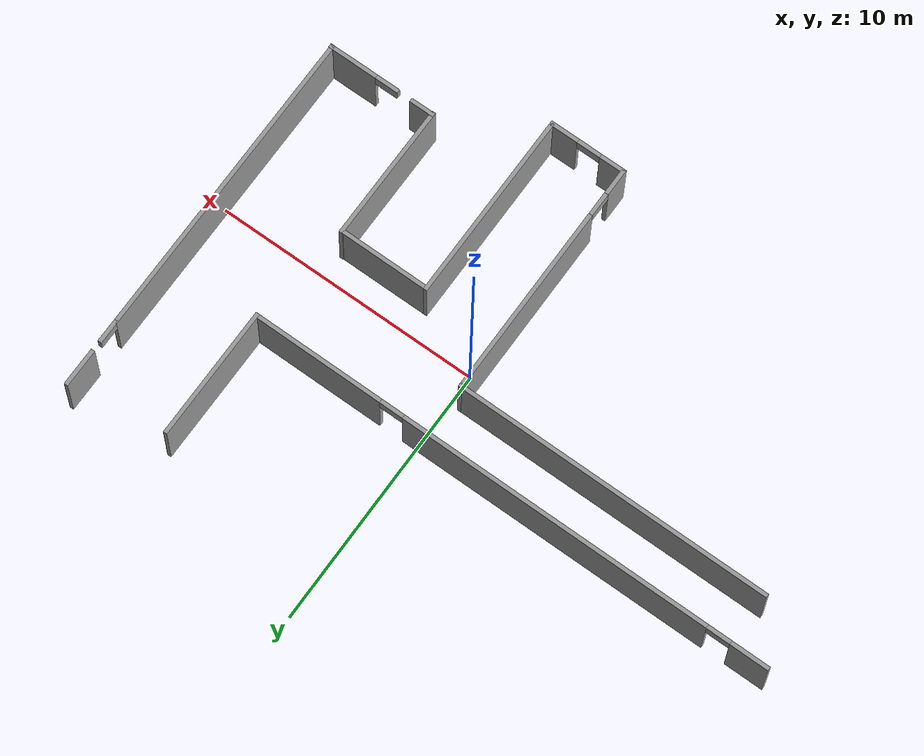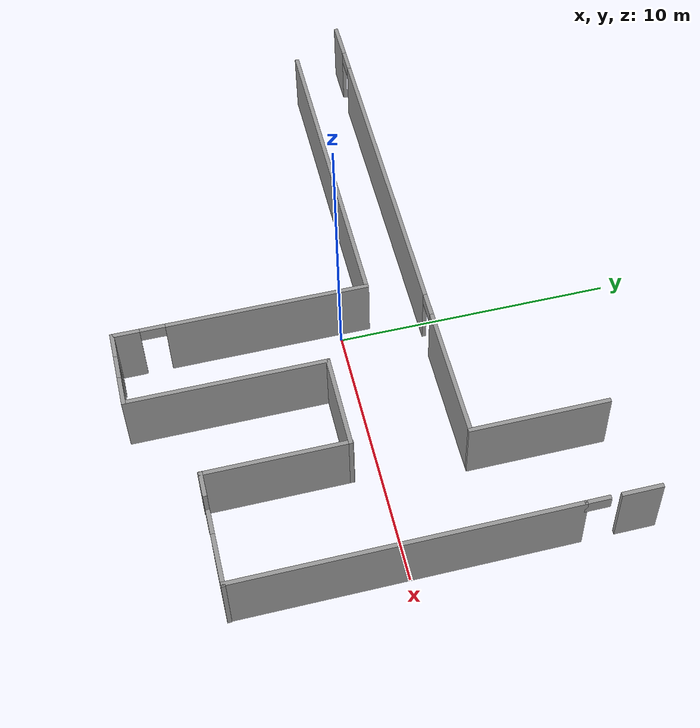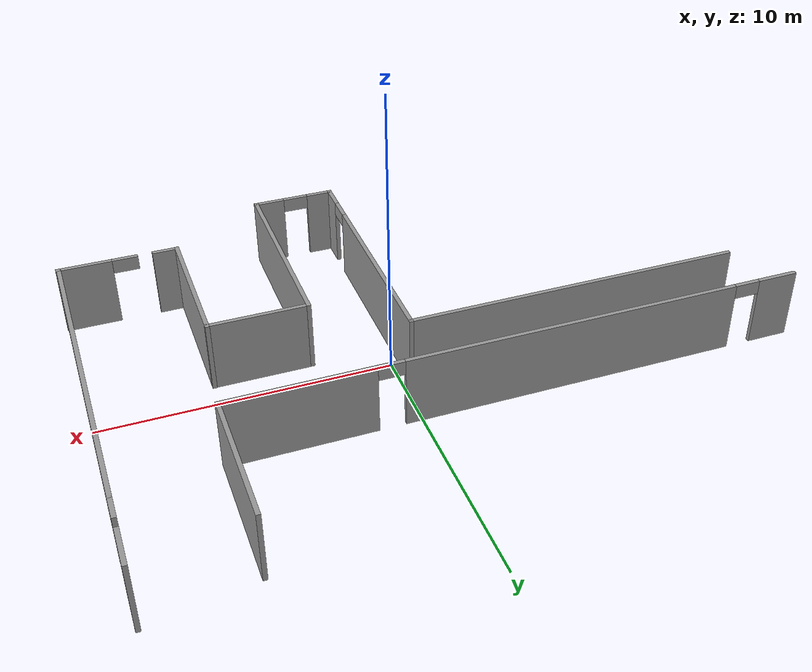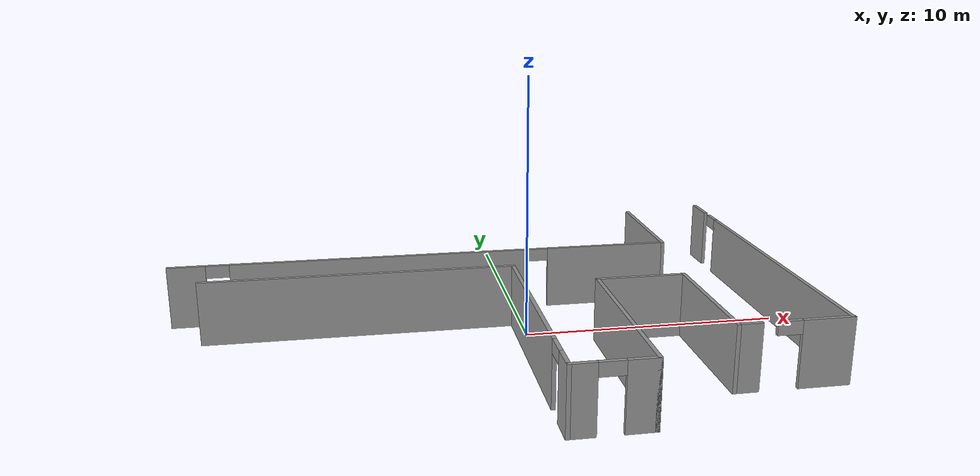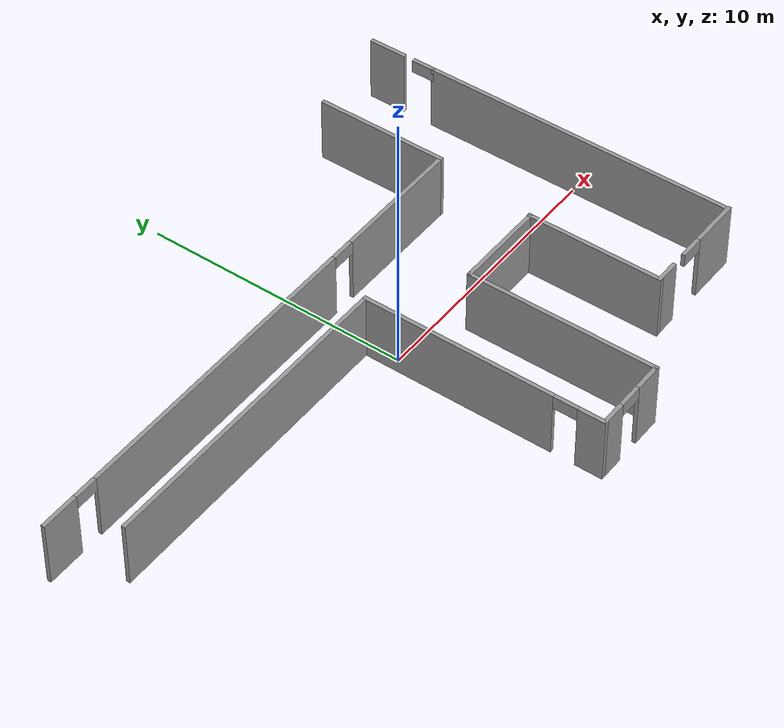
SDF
<?xml version='1.0'?>
<sdf version='1.7'>
  <model name='mil_building_2'>
    <link name='Wall_10'>
      <pose>2.5019 -8.05 0 0 -0 0</pose>
      <self_collide>0</self_collide>
      <enable_wind>0</enable_wind>
      <kinematic>0</kinematic>
      <visual name='Wall_10_Visual'>
        <pose>0 0 1.25 0 -0 0</pose>
        <geometry>
          <box>
            <size>0.15 0.15 2.5</size>
          </box>
        </geometry>
        <material>
          <script>
            <uri>file://media/materials/scripts/gazebo.material</uri>
            <name>Gazebo/Grey</name>
          </script>
          <ambient>1 1 1 1</ambient>
          <shader type='pixel'/>
        </material>
        <meta>
          <layer>0</layer>
        </meta>
        <transparency>0</transparency>
        <cast_shadows>1</cast_shadows>
      </visual>
      <collision name='Wall_10_Collision'>
        <laser_retro>0</laser_retro>
        <max_contacts>10</max_contacts>
        <pose>0 0 1.25 0 -0 0</pose>
        <geometry>
          <box>
            <size>0.15 0.15 2.5</size>
          </box>
        </geometry>
        <surface>
          <friction>
            <ode>
              <mu>1</mu>
              <mu2>1</mu2>
              <fdir1>0 0 0</fdir1>
              <slip1>0</slip1>
              <slip2>0</slip2>
            </ode>
            <torsional>
              <coefficient>1</coefficient>
              <patch_radius>0</patch_radius>
              <surface_radius>0</surface_radius>
              <use_patch_radius>1</use_patch_radius>
              <ode>
                <slip>0</slip>
              </ode>
            </torsional>
          </friction>
          <bounce>
            <restitution_coefficient>0</restitution_coefficient>
            <threshold>1e+06</threshold>
          </bounce>
          <contact>
            <collide_without_contact>0</collide_without_contact>
            <collide_without_contact_bitmask>1</collide_without_contact_bitmask>
            <collide_bitmask>1</collide_bitmask>
            <ode>
              <soft_cfm>0</soft_cfm>
              <soft_erp>0.2</soft_erp>
              <kp>1e+13</kp>
              <kd>1</kd>
              <max_vel>0.01</max_vel>
              <min_depth>0</min_depth>
            </ode>
            <bullet>
              <split_impulse>1</split_impulse>
              <split_impulse_penetration_threshold>-0.01</split_impulse_penetration_threshold>
              <soft_cfm>0</soft_cfm>
              <soft_erp>0.2</soft_erp>
              <kp>1e+13</kp>
              <kd>1</kd>
            </bullet>
          </contact>
        </surface>
      </collision>
    </link>
    <link name='Wall_11'>
      <pose>2.5019 -4.52011 0 0 -0 1.5708</pose>
      <self_collide>0</self_collide>
      <enable_wind>0</enable_wind>
      <kinematic>0</kinematic>
      <visual name='Wall_11_Visual'>
        <pose>0 0 1.25 0 -0 0</pose>
        <geometry>
          <box>
            <size>7.20977 0.15 2.5</size>
          </box>
        </geometry>
        <material>
          <script>
            <uri>file://media/materials/scripts/gazebo.material</uri>
            <name>Gazebo/Grey</name>
          </script>
          <ambient>0.827451 0.843137 0.811765 1</ambient>
          <shader type='pixel'/>
        </material>
        <meta>
          <layer>0</layer>
        </meta>
        <transparency>0</transparency>
        <cast_shadows>1</cast_shadows>
      </visual>
      <collision name='Wall_11_Collision'>
        <laser_retro>0</laser_retro>
        <max_contacts>10</max_contacts>
        <pose>0 0 1.25 0 -0 0</pose>
        <geometry>
          <box>
            <size>7.20977 0.15 2.5</size>
          </box>
        </geometry>
        <surface>
          <friction>
            <ode>
              <mu>1</mu>
              <mu2>1</mu2>
              <fdir1>0 0 0</fdir1>
              <slip1>0</slip1>
              <slip2>0</slip2>
            </ode>
            <torsional>
              <coefficient>1</coefficient>
              <patch_radius>0</patch_radius>
              <surface_radius>0</surface_radius>
              <use_patch_radius>1</use_patch_radius>
              <ode>
                <slip>0</slip>
              </ode>
            </torsional>
          </friction>
          <bounce>
            <restitution_coefficient>0</restitution_coefficient>
            <threshold>1e+06</threshold>
          </bounce>
          <contact>
            <collide_without_contact>0</collide_without_contact>
            <collide_without_contact_bitmask>1</collide_without_contact_bitmask>
            <collide_bitmask>1</collide_bitmask>
            <ode>
              <soft_cfm>0</soft_cfm>
              <soft_erp>0.2</soft_erp>
              <kp>1e+13</kp>
              <kd>1</kd>
              <max_vel>0.01</max_vel>
              <min_depth>0</min_depth>
            </ode>
            <bullet>
              <split_impulse>1</split_impulse>
              <split_impulse_penetration_threshold>-0.01</split_impulse_penetration_threshold>
              <soft_cfm>0</soft_cfm>
              <soft_erp>0.2</soft_erp>
              <kp>1e+13</kp>
              <kd>1</kd>
            </bullet>
          </contact>
        </surface>
      </collision>
    </link>
    <link name='Wall_16'>
      <pose>5.88344 -3.4986 0 0 0 -1.5708</pose>
      <self_collide>0</self_collide>
      <enable_wind>0</enable_wind>
      <kinematic>0</kinematic>
      <gravity>1</gravity>
      <inertial>
        <mass>1</mass>
        <pose>0 0 0 0 -0 0</pose>
        <inertia>
          <ixx>1</ixx>
          <ixy>0</ixy>
          <ixz>0</ixz>
          <iyy>1</iyy>
          <iyz>0</iyz>
          <izz>1</izz>
        </inertia>
      </inertial>
      <visual name='Wall_16_Visual'>
        <pose>0 0 1.25 0 -0 0</pose>
        <geometry>
          <box>
            <size>5.2 0.15 2.5</size>
          </box>
        </geometry>
        <material>
          <script>
            <uri>file://media/materials/scripts/gazebo.material</uri>
            <name>Gazebo/Grey</name>
          </script>
          <ambient>1 1 1 1</ambient>
          <shader type='pixel'>
            <normal_map>__default__</normal_map>
          </shader>
          <diffuse>0.7 0.7 0.7 1</diffuse>
          <specular>0.01 0.01 0.01 1</specular>
          <emissive>0 0 0 1</emissive>
        </material>
        <meta>
          <layer>0</layer>
        </meta>
        <transparency>0</transparency>
        <cast_shadows>1</cast_shadows>
      </visual>
      <collision name='Wall_16_Collision'>
        <laser_retro>0</laser_retro>
        <max_contacts>10</max_contacts>
        <pose>0 0 1.25 0 -0 0</pose>
        <geometry>
          <box>
            <size>6.95977 0.15 2.5</size>
          </box>
        </geometry>
        <surface>
          <friction>
            <ode>
              <mu>1</mu>
              <mu2>1</mu2>
              <fdir1>0 0 0</fdir1>
              <slip1>0</slip1>
              <slip2>0</slip2>
            </ode>
            <torsional>
              <coefficient>1</coefficient>
              <patch_radius>0</patch_radius>
              <surface_radius>0</surface_radius>
              <use_patch_radius>1</use_patch_radius>
              <ode>
                <slip>0</slip>
              </ode>
            </torsional>
          </friction>
          <bounce>
            <restitution_coefficient>0</restitution_coefficient>
            <threshold>1e+06</threshold>
          </bounce>
          <contact>
            <collide_without_contact>0</collide_without_contact>
            <collide_without_contact_bitmask>1</collide_without_contact_bitmask>
            <collide_bitmask>1</collide_bitmask>
            <ode>
              <soft_cfm>0</soft_cfm>
              <soft_erp>0.2</soft_erp>
              <kp>1e+13</kp>
              <kd>1</kd>
              <max_vel>0.01</max_vel>
              <min_depth>0</min_depth>
            </ode>
            <bullet>
              <split_impulse>1</split_impulse>
              <split_impulse_penetration_threshold>-0.01</split_impulse_penetration_threshold>
              <soft_cfm>0</soft_cfm>
              <soft_erp>0.2</soft_erp>
              <kp>1e+13</kp>
              <kd>1</kd>
            </bullet>
          </contact>
        </surface>
      </collision>
    </link>
    <link name='Wall_17'>
      <pose>7.69168 -6.00945 0 0 -0 0</pose>
      <self_collide>0</self_collide>
      <enable_wind>0</enable_wind>
      <kinematic>0</kinematic>
      <gravity>1</gravity>
      <inertial>
        <mass>1</mass>
        <pose>0 0 0 0 -0 0</pose>
        <inertia>
          <ixx>1</ixx>
          <ixy>0</ixy>
          <ixz>0</ixz>
          <iyy>1</iyy>
          <iyz>0</iyz>
          <izz>1</izz>
        </inertia>
      </inertial>
      <visual name='Wall_17_Visual_0'>
        <pose>-1.40412 0 1.25 0 -0 0</pose>
        <geometry>
          <box>
            <size>0.94176 0.15 2.5</size>
          </box>
        </geometry>
        <material>
          <script>
            <uri>file://media/materials/scripts/gazebo.material</uri>
            <name>Gazebo/Grey</name>
          </script>
          <ambient>0.827 0.843 0.812 1</ambient>
          <shader type='pixel'>
            <normal_map>__default__</normal_map>
          </shader>
          <diffuse>0.7 0.7 0.7 1</diffuse>
          <specular>0.01 0.01 0.01 1</specular>
          <emissive>0 0 0 1</emissive>
        </material>
        <meta>
          <layer>0</layer>
        </meta>
        <transparency>0</transparency>
        <cast_shadows>1</cast_shadows>
      </visual>
      <visual name='Wall_17_Visual_1'>
        <pose>1.42088 0 1.25 0 -0 0</pose>
        <geometry>
          <box>
            <size>1.90823 0.15 2.5</size>
          </box>
        </geometry>
        <material>
          <script>
            <uri>file://media/materials/scripts/gazebo.material</uri>
            <name>Gazebo/Grey</name>
          </script>
          <ambient>0.827 0.843 0.812 1</ambient>
          <shader type='pixel'>
            <normal_map>__default__</normal_map>
          </shader>
          <diffuse>0.7 0.7 0.7 1</diffuse>
          <specular>0.01 0.01 0.01 1</specular>
          <emissive>0 0 0 1</emissive>
        </material>
        <meta>
          <layer>0</layer>
        </meta>
        <transparency>0</transparency>
        <cast_shadows>1</cast_shadows>
      </visual>
      <visual name='Wall_17_Visual_2'>
        <pose>0.016765 0 2.25 0 -0 0</pose>
        <geometry>
          <box>
            <size>0.9 0.15 0.5</size>
          </box>
        </geometry>
        <material>
          <script>
            <uri>file://media/materials/scripts/gazebo.material</uri>
            <name>Gazebo/Grey</name>
          </script>
          <ambient>0.827 0.843 0.812 1</ambient>
          <shader type='pixel'>
            <normal_map>__default__</normal_map>
          </shader>
          <diffuse>0.7 0.7 0.7 1</diffuse>
          <specular>0.01 0.01 0.01 1</specular>
          <emissive>0 0 0 1</emissive>
        </material>
        <meta>
          <layer>0</layer>
        </meta>
        <transparency>0</transparency>
        <cast_shadows>1</cast_shadows>
      </visual>
      <collision name='Wall_17_Collision_0'>
        <laser_retro>0</laser_retro>
        <max_contacts>10</max_contacts>
        <pose>-1.40412 0 1.25 0 -0 0</pose>
        <geometry>
          <box>
            <size>1.94176 0.15 2.5</size>
          </box>
        </geometry>
        <surface>
          <friction>
            <ode>
              <mu>1</mu>
              <mu2>1</mu2>
              <fdir1>0 0 0</fdir1>
              <slip1>0</slip1>
              <slip2>0</slip2>
            </ode>
            <torsional>
              <coefficient>1</coefficient>
              <patch_radius>0</patch_radius>
              <surface_radius>0</surface_radius>
              <use_patch_radius>1</use_patch_radius>
              <ode>
                <slip>0</slip>
              </ode>
            </torsional>
          </friction>
          <bounce>
            <restitution_coefficient>0</restitution_coefficient>
            <threshold>1e+06</threshold>
          </bounce>
          <contact>
            <collide_without_contact>0</collide_without_contact>
            <collide_without_contact_bitmask>1</collide_without_contact_bitmask>
            <collide_bitmask>1</collide_bitmask>
            <ode>
              <soft_cfm>0</soft_cfm>
              <soft_erp>0.2</soft_erp>
              <kp>1e+13</kp>
              <kd>1</kd>
              <max_vel>0.01</max_vel>
              <min_depth>0</min_depth>
            </ode>
            <bullet>
              <split_impulse>1</split_impulse>
              <split_impulse_penetration_threshold>-0.01</split_impulse_penetration_threshold>
              <soft_cfm>0</soft_cfm>
              <soft_erp>0.2</soft_erp>
              <kp>1e+13</kp>
              <kd>1</kd>
            </bullet>
          </contact>
        </surface>
      </collision>
      <collision name='Wall_17_Collision_1'>
        <laser_retro>0</laser_retro>
        <max_contacts>10</max_contacts>
        <pose>1.42088 0 1.25 0 -0 0</pose>
        <geometry>
          <box>
            <size>1.90823 0.15 2.5</size>
          </box>
        </geometry>
        <surface>
          <friction>
            <ode>
              <mu>1</mu>
              <mu2>1</mu2>
              <fdir1>0 0 0</fdir1>
              <slip1>0</slip1>
              <slip2>0</slip2>
            </ode>
            <torsional>
              <coefficient>1</coefficient>
              <patch_radius>0</patch_radius>
              <surface_radius>0</surface_radius>
              <use_patch_radius>1</use_patch_radius>
              <ode>
                <slip>0</slip>
              </ode>
            </torsional>
          </friction>
          <bounce>
            <restitution_coefficient>0</restitution_coefficient>
            <threshold>1e+06</threshold>
          </bounce>
          <contact>
            <collide_without_contact>0</collide_without_contact>
            <collide_without_contact_bitmask>1</collide_without_contact_bitmask>
            <collide_bitmask>1</collide_bitmask>
            <ode>
              <soft_cfm>0</soft_cfm>
              <soft_erp>0.2</soft_erp>
              <kp>1e+13</kp>
              <kd>1</kd>
              <max_vel>0.01</max_vel>
              <min_depth>0</min_depth>
            </ode>
            <bullet>
              <split_impulse>1</split_impulse>
              <split_impulse_penetration_threshold>-0.01</split_impulse_penetration_threshold>
              <soft_cfm>0</soft_cfm>
              <soft_erp>0.2</soft_erp>
              <kp>1e+13</kp>
              <kd>1</kd>
            </bullet>
          </contact>
        </surface>
      </collision>
      <collision name='Wall_17_Collision_2'>
        <laser_retro>0</laser_retro>
        <max_contacts>10</max_contacts>
        <pose>0.016765 0 2.25 0 -0 0</pose>
        <geometry>
          <box>
            <size>0.9 0.15 0.5</size>
          </box>
        </geometry>
        <surface>
          <friction>
            <ode>
              <mu>1</mu>
              <mu2>1</mu2>
              <fdir1>0 0 0</fdir1>
              <slip1>0</slip1>
              <slip2>0</slip2>
            </ode>
            <torsional>
              <coefficient>1</coefficient>
              <patch_radius>0</patch_radius>
              <surface_radius>0</surface_radius>
              <use_patch_radius>1</use_patch_radius>
              <ode>
                <slip>0</slip>
              </ode>
            </torsional>
          </friction>
          <bounce>
            <restitution_coefficient>0</restitution_coefficient>
            <threshold>1e+06</threshold>
          </bounce>
          <contact>
            <collide_without_contact>0</collide_without_contact>
            <collide_without_contact_bitmask>1</collide_without_contact_bitmask>
            <collide_bitmask>1</collide_bitmask>
            <ode>
              <soft_cfm>0</soft_cfm>
              <soft_erp>0.2</soft_erp>
              <kp>1e+13</kp>
              <kd>1</kd>
              <max_vel>0.01</max_vel>
              <min_depth>0</min_depth>
            </ode>
            <bullet>
              <split_impulse>1</split_impulse>
              <split_impulse_penetration_threshold>-0.01</split_impulse_penetration_threshold>
              <soft_cfm>0</soft_cfm>
              <soft_erp>0.2</soft_erp>
              <kp>1e+13</kp>
              <kd>1</kd>
            </bullet>
          </contact>
        </surface>
      </collision>
    </link>
    <link name='Wall_18'>
      <pose>9.966 1.07393 0 0 -0 1.5708</pose>
      <self_collide>0</self_collide>
      <enable_wind>0</enable_wind>
      <kinematic>0</kinematic>
      <gravity>1</gravity>
      <inertial>
        <mass>1</mass>
        <pose>0 0 0 0 -0 0</pose>
        <inertia>
          <ixx>1</ixx>
          <ixy>0</ixy>
          <ixz>0</ixz>
          <iyy>1</iyy>
          <iyz>0</iyz>
          <izz>1</izz>
        </inertia>
      </inertial>
      <visual name='Wall_18_Visual_0'>
        <pose>-1.17215 0 1.25 0 -0 0</pose>
        <geometry>
          <box>
            <size>11.9557 0.15 2.5</size>
          </box>
        </geometry>
        <material>
          <script>
            <uri>file://media/materials/scripts/gazebo.material</uri>
            <name>Gazebo/Grey</name>
          </script>
          <ambient>0.827 0.843 0.812 1</ambient>
          <shader type='pixel'>
            <normal_map>__default__</normal_map>
          </shader>
          <diffuse>0.7 0.7 0.7 1</diffuse>
          <specular>0.01 0.01 0.01 1</specular>
          <emissive>0 0 0 1</emissive>
        </material>
        <meta>
          <layer>0</layer>
        </meta>
        <transparency>0</transparency>
        <cast_shadows>1</cast_shadows>
      </visual>
      <visual name='Wall_18_Visual_1'>
        <pose>6.67785 0 1.25 0 -0 0</pose>
        <geometry>
          <box>
            <size>1.4443 0.15 2.5</size>
          </box>
        </geometry>
        <material>
          <script>
            <uri>file://media/materials/scripts/gazebo.material</uri>
            <name>Gazebo/Grey</name>
          </script>
          <ambient>0.827 0.843 0.812 1</ambient>
          <shader type='pixel'>
            <normal_map>__default__</normal_map>
          </shader>
          <diffuse>0.7 0.7 0.7 1</diffuse>
          <specular>0.01 0.01 0.01 1</specular>
          <emissive>0 0 0 1</emissive>
        </material>
        <meta>
          <layer>0</layer>
        </meta>
        <transparency>0</transparency>
        <cast_shadows>1</cast_shadows>
      </visual>
      <visual name='Wall_18_Visual_2'>
        <pose>5.157 0 2.25 0 -0 0</pose>
        <geometry>
          <box>
            <size>0.9 0.15 0.5</size>
          </box>
        </geometry>
        <material>
          <script>
            <uri>file://media/materials/scripts/gazebo.material</uri>
            <name>Gazebo/Grey</name>
          </script>
          <ambient>0.827 0.843 0.812 1</ambient>
          <shader type='pixel'>
            <normal_map>__default__</normal_map>
          </shader>
          <diffuse>0.7 0.7 0.7 1</diffuse>
          <specular>0.01 0.01 0.01 1</specular>
          <emissive>0 0 0 1</emissive>
        </material>
        <meta>
          <layer>0</layer>
        </meta>
        <transparency>0</transparency>
        <cast_shadows>1</cast_shadows>
      </visual>
      <collision name='Wall_18_Collision_0'>
        <laser_retro>0</laser_retro>
        <max_contacts>10</max_contacts>
        <pose>-1.17215 0 1.25 0 -0 0</pose>
        <geometry>
          <box>
            <size>13.6557 0.15 2.5</size>
          </box>
        </geometry>
        <surface>
          <friction>
            <ode>
              <mu>1</mu>
              <mu2>1</mu2>
              <fdir1>0 0 0</fdir1>
              <slip1>0</slip1>
              <slip2>0</slip2>
            </ode>
            <torsional>
              <coefficient>1</coefficient>
              <patch_radius>0</patch_radius>
              <surface_radius>0</surface_radius>
              <use_patch_radius>1</use_patch_radius>
              <ode>
                <slip>0</slip>
              </ode>
            </torsional>
          </friction>
          <bounce>
            <restitution_coefficient>0</restitution_coefficient>
            <threshold>1e+06</threshold>
          </bounce>
          <contact>
            <collide_without_contact>0</collide_without_contact>
            <collide_without_contact_bitmask>1</collide_without_contact_bitmask>
            <collide_bitmask>1</collide_bitmask>
            <ode>
              <soft_cfm>0</soft_cfm>
              <soft_erp>0.2</soft_erp>
              <kp>1e+13</kp>
              <kd>1</kd>
              <max_vel>0.01</max_vel>
              <min_depth>0</min_depth>
            </ode>
            <bullet>
              <split_impulse>1</split_impulse>
              <split_impulse_penetration_threshold>-0.01</split_impulse_penetration_threshold>
              <soft_cfm>0</soft_cfm>
              <soft_erp>0.2</soft_erp>
              <kp>1e+13</kp>
              <kd>1</kd>
            </bullet>
          </contact>
        </surface>
      </collision>
      <collision name='Wall_18_Collision_1'>
        <laser_retro>0</laser_retro>
        <max_contacts>10</max_contacts>
        <pose>7.27785 0 1.25 0 -0 0</pose>
        <geometry>
          <box>
            <size>1.4443 0.15 2.5</size>
          </box>
        </geometry>
        <surface>
          <friction>
            <ode>
              <mu>1</mu>
              <mu2>1</mu2>
              <fdir1>0 0 0</fdir1>
              <slip1>0</slip1>
              <slip2>0</slip2>
            </ode>
            <torsional>
              <coefficient>1</coefficient>
              <patch_radius>0</patch_radius>
              <surface_radius>0</surface_radius>
              <use_patch_radius>1</use_patch_radius>
              <ode>
                <slip>0</slip>
              </ode>
            </torsional>
          </friction>
          <bounce>
            <restitution_coefficient>0</restitution_coefficient>
            <threshold>1e+06</threshold>
          </bounce>
          <contact>
            <collide_without_contact>0</collide_without_contact>
            <collide_without_contact_bitmask>1</collide_without_contact_bitmask>
            <collide_bitmask>1</collide_bitmask>
            <ode>
              <soft_cfm>0</soft_cfm>
              <soft_erp>0.2</soft_erp>
              <kp>1e+13</kp>
              <kd>1</kd>
              <max_vel>0.01</max_vel>
              <min_depth>0</min_depth>
            </ode>
            <bullet>
              <split_impulse>1</split_impulse>
              <split_impulse_penetration_threshold>-0.01</split_impulse_penetration_threshold>
              <soft_cfm>0</soft_cfm>
              <soft_erp>0.2</soft_erp>
              <kp>1e+13</kp>
              <kd>1</kd>
            </bullet>
          </contact>
        </surface>
      </collision>
      <collision name='Wall_18_Collision_2'>
        <laser_retro>0</laser_retro>
        <max_contacts>10</max_contacts>
        <pose>6.1057 0 2.25 0 -0 0</pose>
        <geometry>
          <box>
            <size>0.9 0.15 0.5</size>
          </box>
        </geometry>
        <surface>
          <friction>
            <ode>
              <mu>1</mu>
              <mu2>1</mu2>
              <fdir1>0 0 0</fdir1>
              <slip1>0</slip1>
              <slip2>0</slip2>
            </ode>
            <torsional>
              <coefficient>1</coefficient>
              <patch_radius>0</patch_radius>
              <surface_radius>0</surface_radius>
              <use_patch_radius>1</use_patch_radius>
              <ode>
                <slip>0</slip>
              </ode>
            </torsional>
          </friction>
          <bounce>
            <restitution_coefficient>0</restitution_coefficient>
            <threshold>1e+06</threshold>
          </bounce>
          <contact>
            <collide_without_contact>0</collide_without_contact>
            <collide_without_contact_bitmask>1</collide_without_contact_bitmask>
            <collide_bitmask>1</collide_bitmask>
            <ode>
              <soft_cfm>0</soft_cfm>
              <soft_erp>0.2</soft_erp>
              <kp>1e+13</kp>
              <kd>1</kd>
              <max_vel>0.01</max_vel>
              <min_depth>0</min_depth>
            </ode>
            <bullet>
              <split_impulse>1</split_impulse>
              <split_impulse_penetration_threshold>-0.01</split_impulse_penetration_threshold>
              <soft_cfm>0</soft_cfm>
              <soft_erp>0.2</soft_erp>
              <kp>1e+13</kp>
              <kd>1</kd>
            </bullet>
          </contact>
        </surface>
      </collision>
    </link>
    <link name='Wall_20'>
      <pose>6.40615 5.40255 0 0 -0 1.5708</pose>
      <self_collide>0</self_collide>
      <enable_wind>0</enable_wind>
      <kinematic>0</kinematic>
      <visual name='Wall_20_Visual'>
        <pose>0 0 1.25 0 -0 0</pose>
        <geometry>
          <box>
            <size>5 0.15 2.5</size>
          </box>
        </geometry>
        <material>
          <script>
            <uri>file://media/materials/scripts/gazebo.material</uri>
            <name>Gazebo/Grey</name>
          </script>
          <ambient>0.827451 0.843137 0.811765 1</ambient>
          <shader type='pixel'/>
        </material>
        <meta>
          <layer>0</layer>
        </meta>
        <transparency>0</transparency>
        <cast_shadows>1</cast_shadows>
      </visual>
      <collision name='Wall_20_Collision'>
        <laser_retro>0</laser_retro>
        <max_contacts>10</max_contacts>
        <pose>0 0 1.25 0 -0 0</pose>
        <geometry>
          <box>
            <size>5 0.15 2.5</size>
          </box>
        </geometry>
        <surface>
          <friction>
            <ode>
              <mu>1</mu>
              <mu2>1</mu2>
              <fdir1>0 0 0</fdir1>
              <slip1>0</slip1>
              <slip2>0</slip2>
            </ode>
            <torsional>
              <coefficient>1</coefficient>
              <patch_radius>0</patch_radius>
              <surface_radius>0</surface_radius>
              <use_patch_radius>1</use_patch_radius>
              <ode>
                <slip>0</slip>
              </ode>
            </torsional>
          </friction>
          <bounce>
            <restitution_coefficient>0</restitution_coefficient>
            <threshold>1e+06</threshold>
          </bounce>
          <contact>
            <collide_without_contact>0</collide_without_contact>
            <collide_without_contact_bitmask>1</collide_without_contact_bitmask>
            <collide_bitmask>1</collide_bitmask>
            <ode>
              <soft_cfm>0</soft_cfm>
              <soft_erp>0.2</soft_erp>
              <kp>1e+13</kp>
              <kd>1</kd>
              <max_vel>0.01</max_vel>
              <min_depth>0</min_depth>
            </ode>
            <bullet>
              <split_impulse>1</split_impulse>
              <split_impulse_penetration_threshold>-0.01</split_impulse_penetration_threshold>
              <soft_cfm>0</soft_cfm>
              <soft_erp>0.2</soft_erp>
              <kp>1e+13</kp>
              <kd>1</kd>
            </bullet>
          </contact>
        </surface>
      </collision>
    </link>
    <link name='Wall_22'>
      <pose>4.20869 -0.990227 0 0 -0 0</pose>
      <self_collide>0</self_collide>
      <enable_wind>0</enable_wind>
      <kinematic>0</kinematic>
      <gravity>1</gravity>
      <inertial>
        <mass>1</mass>
        <pose>0 0 0 0 -0 0</pose>
        <inertia>
          <ixx>1</ixx>
          <ixy>0</ixy>
          <ixz>0</ixz>
          <iyy>1</iyy>
          <iyz>0</iyz>
          <izz>1</izz>
        </inertia>
      </inertial>
      <visual name='Wall_22_Visual'>
        <pose>0 0 1.25 0 -0 0</pose>
        <geometry>
          <box>
            <size>3.5 0.15 2.5</size>
          </box>
        </geometry>
        <material>
          <script>
            <uri>file://media/materials/scripts/gazebo.material</uri>
            <name>Gazebo/Grey</name>
          </script>
          <ambient>0.827 0.843 0.812 1</ambient>
          <shader type='pixel'>
            <normal_map>__default__</normal_map>
          </shader>
          <diffuse>0.7 0.7 0.7 1</diffuse>
          <specular>0.01 0.01 0.01 1</specular>
          <emissive>0 0 0 1</emissive>
        </material>
        <meta>
          <layer>0</layer>
        </meta>
        <transparency>0</transparency>
        <cast_shadows>1</cast_shadows>
      </visual>
      <collision name='Wall_22_Collision'>
        <laser_retro>0</laser_retro>
        <max_contacts>10</max_contacts>
        <pose>0 0 1.25 0 -0 0</pose>
        <geometry>
          <box>
            <size>5.25 0.15 2.5</size>
          </box>
        </geometry>
        <surface>
          <friction>
            <ode>
              <mu>1</mu>
              <mu2>1</mu2>
              <fdir1>0 0 0</fdir1>
              <slip1>0</slip1>
              <slip2>0</slip2>
            </ode>
            <torsional>
              <coefficient>1</coefficient>
              <patch_radius>0</patch_radius>
              <surface_radius>0</surface_radius>
              <use_patch_radius>1</use_patch_radius>
              <ode>
                <slip>0</slip>
              </ode>
            </torsional>
          </friction>
          <bounce>
            <restitution_coefficient>0</restitution_coefficient>
            <threshold>1e+06</threshold>
          </bounce>
          <contact>
            <collide_without_contact>0</collide_without_contact>
            <collide_without_contact_bitmask>1</collide_without_contact_bitmask>
            <collide_bitmask>1</collide_bitmask>
            <ode>
              <soft_cfm>0</soft_cfm>
              <soft_erp>0.2</soft_erp>
              <kp>1e+13</kp>
              <kd>1</kd>
              <max_vel>0.01</max_vel>
              <min_depth>0</min_depth>
            </ode>
            <bullet>
              <split_impulse>1</split_impulse>
              <split_impulse_penetration_threshold>-0.01</split_impulse_penetration_threshold>
              <soft_cfm>0</soft_cfm>
              <soft_erp>0.2</soft_erp>
              <kp>1e+13</kp>
              <kd>1</kd>
            </bullet>
          </contact>
        </surface>
      </collision>
    </link>
    <link name='Wall_3'>
      <pose>-3.65906 2.97755 0 0 -0 0</pose>
      <self_collide>0</self_collide>
      <enable_wind>0</enable_wind>
      <kinematic>0</kinematic>
      <visual name='Wall_3_Visual_0'>
        <pose>-9.26763 0 1.25 0 -0 0</pose>
        <geometry>
          <box>
            <size>1.46474 0.15 2.5</size>
          </box>
        </geometry>
        <material>
          <script>
            <uri>file://media/materials/scripts/gazebo.material</uri>
            <name>Gazebo/Grey</name>
          </script>
          <ambient>0.827451 0.843137 0.811765 1</ambient>
          <shader type='pixel'/>
        </material>
        <meta>
          <layer>0</layer>
        </meta>
        <transparency>0</transparency>
        <cast_shadows>1</cast_shadows>
      </visual>
      <visual name='Wall_3_Visual_1'>
        <pose>-1.71657 0 1.25 0 -0 0</pose>
        <geometry>
          <box>
            <size>11.8374 0.15 2.5</size>
          </box>
        </geometry>
        <material>
          <script>
            <uri>file://media/materials/scripts/gazebo.material</uri>
            <name>Gazebo/Grey</name>
          </script>
          <ambient>0.827451 0.843137 0.811765 1</ambient>
          <shader type='pixel'/>
        </material>
        <meta>
          <layer>0</layer>
        </meta>
        <transparency>0</transparency>
        <cast_shadows>1</cast_shadows>
      </visual>
      <visual name='Wall_3_Visual_2'>
        <pose>7.55105 0 1.25 0 -0 0</pose>
        <geometry>
          <box>
            <size>4.89789 0.15 2.5</size>
          </box>
        </geometry>
        <material>
          <script>
            <uri>file://media/materials/scripts/gazebo.material</uri>
            <name>Gazebo/Grey</name>
          </script>
          <ambient>0.827451 0.843137 0.811765 1</ambient>
          <shader type='pixel'/>
        </material>
        <meta>
          <layer>0</layer>
        </meta>
        <transparency>0</transparency>
        <cast_shadows>1</cast_shadows>
      </visual>
      <visual name='Wall_3_Visual_3'>
        <pose>-8.08526 0 2.25 0 -0 0</pose>
        <geometry>
          <box>
            <size>0.9 0.15 0.5</size>
          </box>
        </geometry>
        <material>
          <script>
            <uri>file://media/materials/scripts/gazebo.material</uri>
            <name>Gazebo/Grey</name>
          </script>
          <ambient>0.827451 0.843137 0.811765 1</ambient>
          <shader type='pixel'/>
        </material>
        <meta>
          <layer>0</layer>
        </meta>
        <transparency>0</transparency>
        <cast_shadows>1</cast_shadows>
      </visual>
      <visual name='Wall_3_Visual_4'>
        <pose>4.65211 0 2.25 0 -0 0</pose>
        <geometry>
          <box>
            <size>0.9 0.15 0.5</size>
          </box>
        </geometry>
        <material>
          <script>
            <uri>file://media/materials/scripts/gazebo.material</uri>
            <name>Gazebo/Grey</name>
          </script>
          <ambient>0.827451 0.843137 0.811765 1</ambient>
          <shader type='pixel'/>
        </material>
        <meta>
          <layer>0</layer>
        </meta>
        <transparency>0</transparency>
        <cast_shadows>1</cast_shadows>
      </visual>
      <collision name='Wall_3_Collision_0'>
        <laser_retro>0</laser_retro>
        <max_contacts>10</max_contacts>
        <pose>-9.26763 0 1.25 0 -0 0</pose>
        <geometry>
          <box>
            <size>1.46474 0.15 2.5</size>
          </box>
        </geometry>
        <surface>
          <friction>
            <ode>
              <mu>1</mu>
              <mu2>1</mu2>
              <fdir1>0 0 0</fdir1>
              <slip1>0</slip1>
              <slip2>0</slip2>
            </ode>
            <torsional>
              <coefficient>1</coefficient>
              <patch_radius>0</patch_radius>
              <surface_radius>0</surface_radius>
              <use_patch_radius>1</use_patch_radius>
              <ode>
                <slip>0</slip>
              </ode>
            </torsional>
          </friction>
          <bounce>
            <restitution_coefficient>0</restitution_coefficient>
            <threshold>1e+06</threshold>
          </bounce>
          <contact>
            <collide_without_contact>0</collide_without_contact>
            <collide_without_contact_bitmask>1</collide_without_contact_bitmask>
            <collide_bitmask>1</collide_bitmask>
            <ode>
              <soft_cfm>0</soft_cfm>
              <soft_erp>0.2</soft_erp>
              <kp>1e+13</kp>
              <kd>1</kd>
              <max_vel>0.01</max_vel>
              <min_depth>0</min_depth>
            </ode>
            <bullet>
              <split_impulse>1</split_impulse>
              <split_impulse_penetration_threshold>-0.01</split_impulse_penetration_threshold>
              <soft_cfm>0</soft_cfm>
              <soft_erp>0.2</soft_erp>
              <kp>1e+13</kp>
              <kd>1</kd>
            </bullet>
          </contact>
        </surface>
      </collision>
      <collision name='Wall_3_Collision_2'>
        <laser_retro>0</laser_retro>
        <max_contacts>10</max_contacts>
        <pose>7.55105 0 1.25 0 -0 0</pose>
        <geometry>
          <box>
            <size>4.89789 0.15 2.5</size>
          </box>
        </geometry>
        <surface>
          <friction>
            <ode>
              <mu>1</mu>
              <mu2>1</mu2>
              <fdir1>0 0 0</fdir1>
              <slip1>0</slip1>
              <slip2>0</slip2>
            </ode>
            <torsional>
              <coefficient>1</coefficient>
              <patch_radius>0</patch_radius>
              <surface_radius>0</surface_radius>
              <use_patch_radius>1</use_patch_radius>
              <ode>
                <slip>0</slip>
              </ode>
            </torsional>
          </friction>
          <bounce>
            <restitution_coefficient>0</restitution_coefficient>
            <threshold>1e+06</threshold>
          </bounce>
          <contact>
            <collide_without_contact>0</collide_without_contact>
            <collide_without_contact_bitmask>1</collide_without_contact_bitmask>
            <collide_bitmask>1</collide_bitmask>
            <ode>
              <soft_cfm>0</soft_cfm>
              <soft_erp>0.2</soft_erp>
              <kp>1e+13</kp>
              <kd>1</kd>
              <max_vel>0.01</max_vel>
              <min_depth>0</min_depth>
            </ode>
            <bullet>
              <split_impulse>1</split_impulse>
              <split_impulse_penetration_threshold>-0.01</split_impulse_penetration_threshold>
              <soft_cfm>0</soft_cfm>
              <soft_erp>0.2</soft_erp>
              <kp>1e+13</kp>
              <kd>1</kd>
            </bullet>
          </contact>
        </surface>
      </collision>
      <collision name='Wall_3_Collision_3'>
        <laser_retro>0</laser_retro>
        <max_contacts>10</max_contacts>
        <pose>-8.08526 0 2.25 0 -0 0</pose>
        <geometry>
          <box>
            <size>0.9 0.15 0.5</size>
          </box>
        </geometry>
        <surface>
          <friction>
            <ode>
              <mu>1</mu>
              <mu2>1</mu2>
              <fdir1>0 0 0</fdir1>
              <slip1>0</slip1>
              <slip2>0</slip2>
            </ode>
            <torsional>
              <coefficient>1</coefficient>
              <patch_radius>0</patch_radius>
              <surface_radius>0</surface_radius>
              <use_patch_radius>1</use_patch_radius>
              <ode>
                <slip>0</slip>
              </ode>
            </torsional>
          </friction>
          <bounce>
            <restitution_coefficient>0</restitution_coefficient>
            <threshold>1e+06</threshold>
          </bounce>
          <contact>
            <collide_without_contact>0</collide_without_contact>
            <collide_without_contact_bitmask>1</collide_without_contact_bitmask>
            <collide_bitmask>1</collide_bitmask>
            <ode>
              <soft_cfm>0</soft_cfm>
              <soft_erp>0.2</soft_erp>
              <kp>1e+13</kp>
              <kd>1</kd>
              <max_vel>0.01</max_vel>
              <min_depth>0</min_depth>
            </ode>
            <bullet>
              <split_impulse>1</split_impulse>
              <split_impulse_penetration_threshold>-0.01</split_impulse_penetration_threshold>
              <soft_cfm>0</soft_cfm>
              <soft_erp>0.2</soft_erp>
              <kp>1e+13</kp>
              <kd>1</kd>
            </bullet>
          </contact>
        </surface>
      </collision>
      <collision name='Wall_3_Collision_1'>
        <laser_retro>0</laser_retro>
        <max_contacts>10</max_contacts>
        <pose>-1.71657 0 1.25 0 -0 0</pose>
        <geometry>
          <box>
            <size>11.8374 0.15 2.5</size>
          </box>
        </geometry>
        <surface>
          <friction>
            <ode>
              <mu>1</mu>
              <mu2>1</mu2>
              <fdir1>0 0 0</fdir1>
              <slip1>0</slip1>
              <slip2>0</slip2>
            </ode>
            <torsional>
              <coefficient>1</coefficient>
              <patch_radius>0</patch_radius>
              <surface_radius>0</surface_radius>
              <use_patch_radius>1</use_patch_radius>
              <ode>
                <slip>0</slip>
              </ode>
            </torsional>
          </friction>
          <bounce>
            <restitution_coefficient>0</restitution_coefficient>
            <threshold>1e+06</threshold>
          </bounce>
          <contact>
            <collide_without_contact>0</collide_without_contact>
            <collide_without_contact_bitmask>1</collide_without_contact_bitmask>
            <collide_bitmask>1</collide_bitmask>
            <ode>
              <soft_cfm>0</soft_cfm>
              <soft_erp>0.2</soft_erp>
              <kp>1e+13</kp>
              <kd>1</kd>
              <max_vel>0.01</max_vel>
              <min_depth>0</min_depth>
            </ode>
            <bullet>
              <split_impulse>1</split_impulse>
              <split_impulse_penetration_threshold>-0.01</split_impulse_penetration_threshold>
              <soft_cfm>0</soft_cfm>
              <soft_erp>0.2</soft_erp>
              <kp>1e+13</kp>
              <kd>1</kd>
            </bullet>
          </contact>
        </surface>
      </collision>
      <collision name='Wall_3_Collision_4'>
        <laser_retro>0</laser_retro>
        <max_contacts>10</max_contacts>
        <pose>4.65211 0 2.25 0 -0 0</pose>
        <geometry>
          <box>
            <size>0.9 0.15 0.5</size>
          </box>
        </geometry>
        <surface>
          <friction>
            <ode>
              <mu>1</mu>
              <mu2>1</mu2>
              <fdir1>0 0 0</fdir1>
              <slip1>0</slip1>
              <slip2>0</slip2>
            </ode>
            <torsional>
              <coefficient>1</coefficient>
              <patch_radius>0</patch_radius>
              <surface_radius>0</surface_radius>
              <use_patch_radius>1</use_patch_radius>
              <ode>
                <slip>0</slip>
              </ode>
            </torsional>
          </friction>
          <bounce>
            <restitution_coefficient>0</restitution_coefficient>
            <threshold>1e+06</threshold>
          </bounce>
          <contact>
            <collide_without_contact>0</collide_without_contact>
            <collide_without_contact_bitmask>1</collide_without_contact_bitmask>
            <collide_bitmask>1</collide_bitmask>
            <ode>
              <soft_cfm>0</soft_cfm>
              <soft_erp>0.2</soft_erp>
              <kp>1e+13</kp>
              <kd>1</kd>
              <max_vel>0.01</max_vel>
              <min_depth>0</min_depth>
            </ode>
            <bullet>
              <split_impulse>1</split_impulse>
              <split_impulse_penetration_threshold>-0.01</split_impulse_penetration_threshold>
              <soft_cfm>0</soft_cfm>
              <soft_erp>0.2</soft_erp>
              <kp>1e+13</kp>
              <kd>1</kd>
            </bullet>
          </contact>
        </surface>
      </collision>
    </link>
    <link name='Wall_5'>
      <pose>-6.2769 1.04895 0 0 -0 0</pose>
      <self_collide>0</self_collide>
      <enable_wind>0</enable_wind>
      <kinematic>0</kinematic>
      <visual name='Wall_5_Visual'>
        <pose>0 0 1.25 0 -0 0</pose>
        <geometry>
          <box>
            <size>12 0.15 2.5</size>
          </box>
        </geometry>
        <material>
          <script>
            <uri>file://media/materials/scripts/gazebo.material</uri>
            <name>Gazebo/Grey</name>
          </script>
          <ambient>0.827451 0.843137 0.811765 1</ambient>
          <shader type='pixel'/>
        </material>
        <meta>
          <layer>0</layer>
        </meta>
        <transparency>0</transparency>
        <cast_shadows>1</cast_shadows>
      </visual>
      <collision name='Wall_5_Collision'>
        <laser_retro>0</laser_retro>
        <max_contacts>10</max_contacts>
        <pose>0 0 1.25 0 -0 0</pose>
        <geometry>
          <box>
            <size>12 0.15 2.5</size>
          </box>
        </geometry>
        <surface>
          <friction>
            <ode>
              <mu>1</mu>
              <mu2>1</mu2>
              <fdir1>0 0 0</fdir1>
              <slip1>0</slip1>
              <slip2>0</slip2>
            </ode>
            <torsional>
              <coefficient>1</coefficient>
              <patch_radius>0</patch_radius>
              <surface_radius>0</surface_radius>
              <use_patch_radius>1</use_patch_radius>
              <ode>
                <slip>0</slip>
              </ode>
            </torsional>
          </friction>
          <bounce>
            <restitution_coefficient>0</restitution_coefficient>
            <threshold>1e+06</threshold>
          </bounce>
          <contact>
            <collide_without_contact>0</collide_without_contact>
            <collide_without_contact_bitmask>1</collide_without_contact_bitmask>
            <collide_bitmask>1</collide_bitmask>
            <ode>
              <soft_cfm>0</soft_cfm>
              <soft_erp>0.2</soft_erp>
              <kp>1e+13</kp>
              <kd>1</kd>
              <max_vel>0.01</max_vel>
              <min_depth>0</min_depth>
            </ode>
            <bullet>
              <split_impulse>1</split_impulse>
              <split_impulse_penetration_threshold>-0.01</split_impulse_penetration_threshold>
              <soft_cfm>0</soft_cfm>
              <soft_erp>0.2</soft_erp>
              <kp>1e+13</kp>
              <kd>1</kd>
            </bullet>
          </contact>
        </surface>
      </collision>
    </link>
    <link name='Wall_7'>
      <pose>-0.348098 -3.5 0 0 0 -1.5708</pose>
      <self_collide>0</self_collide>
      <enable_wind>0</enable_wind>
      <kinematic>0</kinematic>
      <visual name='Wall_7_Visual_0'>
        <pose>-0.971314 0 1.25 0 -0 0</pose>
        <geometry>
          <box>
            <size>7.30737 0.15 2.5</size>
          </box>
        </geometry>
        <material>
          <script>
            <uri>file://media/materials/scripts/gazebo.material</uri>
            <name>Gazebo/Grey</name>
          </script>
          <ambient>0.827451 0.843137 0.811765 1</ambient>
          <shader type='pixel'/>
        </material>
        <meta>
          <layer>0</layer>
        </meta>
        <transparency>0</transparency>
        <cast_shadows>1</cast_shadows>
      </visual>
      <visual name='Wall_7_Visual_1'>
        <pose>4.10369 0 1.25 0 -0 0</pose>
        <geometry>
          <box>
            <size>1.04263 0.15 2.5</size>
          </box>
        </geometry>
        <material>
          <script>
            <uri>file://media/materials/scripts/gazebo.material</uri>
            <name>Gazebo/Grey</name>
          </script>
          <ambient>0.827451 0.843137 0.811765 1</ambient>
          <shader type='pixel'/>
        </material>
        <meta>
          <layer>0</layer>
        </meta>
        <transparency>0</transparency>
        <cast_shadows>1</cast_shadows>
      </visual>
      <visual name='Wall_7_Visual_2'>
        <pose>3.13237 0 2.25 0 -0 0</pose>
        <geometry>
          <box>
            <size>0.9 0.15 0.5</size>
          </box>
        </geometry>
        <material>
          <script>
            <uri>file://media/materials/scripts/gazebo.material</uri>
            <name>Gazebo/Grey</name>
          </script>
          <ambient>0.827451 0.843137 0.811765 1</ambient>
          <shader type='pixel'/>
        </material>
        <meta>
          <layer>0</layer>
        </meta>
        <transparency>0</transparency>
        <cast_shadows>1</cast_shadows>
      </visual>
      <collision name='Wall_7_Collision_0'>
        <laser_retro>0</laser_retro>
        <max_contacts>10</max_contacts>
        <pose>-0.971314 0 1.25 0 -0 0</pose>
        <geometry>
          <box>
            <size>7.30737 0.15 2.5</size>
          </box>
        </geometry>
        <surface>
          <friction>
            <ode>
              <mu>1</mu>
              <mu2>1</mu2>
              <fdir1>0 0 0</fdir1>
              <slip1>0</slip1>
              <slip2>0</slip2>
            </ode>
            <torsional>
              <coefficient>1</coefficient>
              <patch_radius>0</patch_radius>
              <surface_radius>0</surface_radius>
              <use_patch_radius>1</use_patch_radius>
              <ode>
                <slip>0</slip>
              </ode>
            </torsional>
          </friction>
          <bounce>
            <restitution_coefficient>0</restitution_coefficient>
            <threshold>1e+06</threshold>
          </bounce>
          <contact>
            <collide_without_contact>0</collide_without_contact>
            <collide_without_contact_bitmask>1</collide_without_contact_bitmask>
            <collide_bitmask>1</collide_bitmask>
            <ode>
              <soft_cfm>0</soft_cfm>
              <soft_erp>0.2</soft_erp>
              <kp>1e+13</kp>
              <kd>1</kd>
              <max_vel>0.01</max_vel>
              <min_depth>0</min_depth>
            </ode>
            <bullet>
              <split_impulse>1</split_impulse>
              <split_impulse_penetration_threshold>-0.01</split_impulse_penetration_threshold>
              <soft_cfm>0</soft_cfm>
              <soft_erp>0.2</soft_erp>
              <kp>1e+13</kp>
              <kd>1</kd>
            </bullet>
          </contact>
        </surface>
      </collision>
      <collision name='Wall_7_Collision_1'>
        <laser_retro>0</laser_retro>
        <max_contacts>10</max_contacts>
        <pose>4.10369 0 1.25 0 -0 0</pose>
        <geometry>
          <box>
            <size>1.04263 0.15 2.5</size>
          </box>
        </geometry>
        <surface>
          <friction>
            <ode>
              <mu>1</mu>
              <mu2>1</mu2>
              <fdir1>0 0 0</fdir1>
              <slip1>0</slip1>
              <slip2>0</slip2>
            </ode>
            <torsional>
              <coefficient>1</coefficient>
              <patch_radius>0</patch_radius>
              <surface_radius>0</surface_radius>
              <use_patch_radius>1</use_patch_radius>
              <ode>
                <slip>0</slip>
              </ode>
            </torsional>
          </friction>
          <bounce>
            <restitution_coefficient>0</restitution_coefficient>
            <threshold>1e+06</threshold>
          </bounce>
          <contact>
            <collide_without_contact>0</collide_without_contact>
            <collide_without_contact_bitmask>1</collide_without_contact_bitmask>
            <collide_bitmask>1</collide_bitmask>
            <ode>
              <soft_cfm>0</soft_cfm>
              <soft_erp>0.2</soft_erp>
              <kp>1e+13</kp>
              <kd>1</kd>
              <max_vel>0.01</max_vel>
              <min_depth>0</min_depth>
            </ode>
            <bullet>
              <split_impulse>1</split_impulse>
              <split_impulse_penetration_threshold>-0.01</split_impulse_penetration_threshold>
              <soft_cfm>0</soft_cfm>
              <soft_erp>0.2</soft_erp>
              <kp>1e+13</kp>
              <kd>1</kd>
            </bullet>
          </contact>
        </surface>
      </collision>
      <collision name='Wall_7_Collision_2'>
        <laser_retro>0</laser_retro>
        <max_contacts>10</max_contacts>
        <pose>3.13237 0 2.25 0 -0 0</pose>
        <geometry>
          <box>
            <size>0.9 0.15 0.5</size>
          </box>
        </geometry>
        <surface>
          <friction>
            <ode>
              <mu>1</mu>
              <mu2>1</mu2>
              <fdir1>0 0 0</fdir1>
              <slip1>0</slip1>
              <slip2>0</slip2>
            </ode>
            <torsional>
              <coefficient>1</coefficient>
              <patch_radius>0</patch_radius>
              <surface_radius>0</surface_radius>
              <use_patch_radius>1</use_patch_radius>
              <ode>
                <slip>0</slip>
              </ode>
            </torsional>
          </friction>
          <bounce>
            <restitution_coefficient>0</restitution_coefficient>
            <threshold>1e+06</threshold>
          </bounce>
          <contact>
            <collide_without_contact>0</collide_without_contact>
            <collide_without_contact_bitmask>1</collide_without_contact_bitmask>
            <collide_bitmask>1</collide_bitmask>
            <ode>
              <soft_cfm>0</soft_cfm>
              <soft_erp>0.2</soft_erp>
              <kp>1e+13</kp>
              <kd>1</kd>
              <max_vel>0.01</max_vel>
              <min_depth>0</min_depth>
            </ode>
            <bullet>
              <split_impulse>1</split_impulse>
              <split_impulse_penetration_threshold>-0.01</split_impulse_penetration_threshold>
              <soft_cfm>0</soft_cfm>
              <soft_erp>0.2</soft_erp>
              <kp>1e+13</kp>
              <kd>1</kd>
            </bullet>
          </contact>
        </surface>
      </collision>
    </link>
    <link name='Wall_9'>
      <pose>1.0769 -8.05 0 0 -0 0</pose>
      <self_collide>0</self_collide>
      <enable_wind>0</enable_wind>
      <kinematic>0</kinematic>
      <visual name='Wall_9_Visual_0'>
        <pose>-1.00827 0 1.25 0 -0 0</pose>
        <geometry>
          <box>
            <size>0.983456 0.15 2.5</size>
          </box>
        </geometry>
        <material>
          <script>
            <uri>file://media/materials/scripts/gazebo.material</uri>
            <name>Gazebo/Grey</name>
          </script>
          <ambient>0.827451 0.843137 0.811765 1</ambient>
          <shader type='pixel'/>
        </material>
        <meta>
          <layer>0</layer>
        </meta>
        <transparency>0</transparency>
        <cast_shadows>1</cast_shadows>
      </visual>
      <visual name='Wall_9_Visual_1'>
        <pose>0.941728 0 1.25 0 -0 0</pose>
        <geometry>
          <box>
            <size>1.11654 0.15 2.5</size>
          </box>
        </geometry>
        <material>
          <script>
            <uri>file://media/materials/scripts/gazebo.material</uri>
            <name>Gazebo/Grey</name>
          </script>
          <ambient>0.827451 0.843137 0.811765 1</ambient>
          <shader type='pixel'/>
        </material>
        <meta>
          <layer>0</layer>
        </meta>
        <transparency>0</transparency>
        <cast_shadows>1</cast_shadows>
      </visual>
      <visual name='Wall_9_Visual_2'>
        <pose>-0.066544 0 2.25 0 -0 0</pose>
        <geometry>
          <box>
            <size>0.9 0.15 0.5</size>
          </box>
        </geometry>
        <material>
          <script>
            <uri>file://media/materials/scripts/gazebo.material</uri>
            <name>Gazebo/Grey</name>
          </script>
          <ambient>0.827451 0.843137 0.811765 1</ambient>
          <shader type='pixel'/>
        </material>
        <meta>
          <layer>0</layer>
        </meta>
        <transparency>0</transparency>
        <cast_shadows>1</cast_shadows>
      </visual>
      <collision name='Wall_9_Collision_0'>
        <laser_retro>0</laser_retro>
        <max_contacts>10</max_contacts>
        <pose>-1.00827 0 1.25 0 -0 0</pose>
        <geometry>
          <box>
            <size>0.983456 0.15 2.5</size>
          </box>
        </geometry>
        <surface>
          <friction>
            <ode>
              <mu>1</mu>
              <mu2>1</mu2>
              <fdir1>0 0 0</fdir1>
              <slip1>0</slip1>
              <slip2>0</slip2>
            </ode>
            <torsional>
              <coefficient>1</coefficient>
              <patch_radius>0</patch_radius>
              <surface_radius>0</surface_radius>
              <use_patch_radius>1</use_patch_radius>
              <ode>
                <slip>0</slip>
              </ode>
            </torsional>
          </friction>
          <bounce>
            <restitution_coefficient>0</restitution_coefficient>
            <threshold>1e+06</threshold>
          </bounce>
          <contact>
            <collide_without_contact>0</collide_without_contact>
            <collide_without_contact_bitmask>1</collide_without_contact_bitmask>
            <collide_bitmask>1</collide_bitmask>
            <ode>
              <soft_cfm>0</soft_cfm>
              <soft_erp>0.2</soft_erp>
              <kp>1e+13</kp>
              <kd>1</kd>
              <max_vel>0.01</max_vel>
              <min_depth>0</min_depth>
            </ode>
            <bullet>
              <split_impulse>1</split_impulse>
              <split_impulse_penetration_threshold>-0.01</split_impulse_penetration_threshold>
              <soft_cfm>0</soft_cfm>
              <soft_erp>0.2</soft_erp>
              <kp>1e+13</kp>
              <kd>1</kd>
            </bullet>
          </contact>
        </surface>
      </collision>
      <collision name='Wall_9_Collision_1'>
        <laser_retro>0</laser_retro>
        <max_contacts>10</max_contacts>
        <pose>0.941728 0 1.25 0 -0 0</pose>
        <geometry>
          <box>
            <size>1.11654 0.15 2.5</size>
          </box>
        </geometry>
        <surface>
          <friction>
            <ode>
              <mu>1</mu>
              <mu2>1</mu2>
              <fdir1>0 0 0</fdir1>
              <slip1>0</slip1>
              <slip2>0</slip2>
            </ode>
            <torsional>
              <coefficient>1</coefficient>
              <patch_radius>0</patch_radius>
              <surface_radius>0</surface_radius>
              <use_patch_radius>1</use_patch_radius>
              <ode>
                <slip>0</slip>
              </ode>
            </torsional>
          </friction>
          <bounce>
            <restitution_coefficient>0</restitution_coefficient>
            <threshold>1e+06</threshold>
          </bounce>
          <contact>
            <collide_without_contact>0</collide_without_contact>
            <collide_without_contact_bitmask>1</collide_without_contact_bitmask>
            <collide_bitmask>1</collide_bitmask>
            <ode>
              <soft_cfm>0</soft_cfm>
              <soft_erp>0.2</soft_erp>
              <kp>1e+13</kp>
              <kd>1</kd>
              <max_vel>0.01</max_vel>
              <min_depth>0</min_depth>
            </ode>
            <bullet>
              <split_impulse>1</split_impulse>
              <split_impulse_penetration_threshold>-0.01</split_impulse_penetration_threshold>
              <soft_cfm>0</soft_cfm>
              <soft_erp>0.2</soft_erp>
              <kp>1e+13</kp>
              <kd>1</kd>
            </bullet>
          </contact>
        </surface>
      </collision>
      <collision name='Wall_9_Collision_2'>
        <laser_retro>0</laser_retro>
        <max_contacts>10</max_contacts>
        <pose>-0.066544 0 2.25 0 -0 0</pose>
        <geometry>
          <box>
            <size>0.9 0.15 0.5</size>
          </box>
        </geometry>
        <surface>
          <friction>
            <ode>
              <mu>1</mu>
              <mu2>1</mu2>
              <fdir1>0 0 0</fdir1>
              <slip1>0</slip1>
              <slip2>0</slip2>
            </ode>
            <torsional>
              <coefficient>1</coefficient>
              <patch_radius>0</patch_radius>
              <surface_radius>0</surface_radius>
              <use_patch_radius>1</use_patch_radius>
              <ode>
                <slip>0</slip>
              </ode>
            </torsional>
          </friction>
          <bounce>
            <restitution_coefficient>0</restitution_coefficient>
            <threshold>1e+06</threshold>
          </bounce>
          <contact>
            <collide_without_contact>0</collide_without_contact>
            <collide_without_contact_bitmask>1</collide_without_contact_bitmask>
            <collide_bitmask>1</collide_bitmask>
            <ode>
              <soft_cfm>0</soft_cfm>
              <soft_erp>0.2</soft_erp>
              <kp>1e+13</kp>
              <kd>1</kd>
              <max_vel>0.01</max_vel>
              <min_depth>0</min_depth>
            </ode>
            <bullet>
              <split_impulse>1</split_impulse>
              <split_impulse_penetration_threshold>-0.01</split_impulse_penetration_threshold>
              <soft_cfm>0</soft_cfm>
              <soft_erp>0.2</soft_erp>
              <kp>1e+13</kp>
              <kd>1</kd>
            </bullet>
          </contact>
        </surface>
      </collision>
    </link>
    <static>1</static>
    <allow_auto_disable>1</allow_auto_disable>
  </model>
</sdf>
